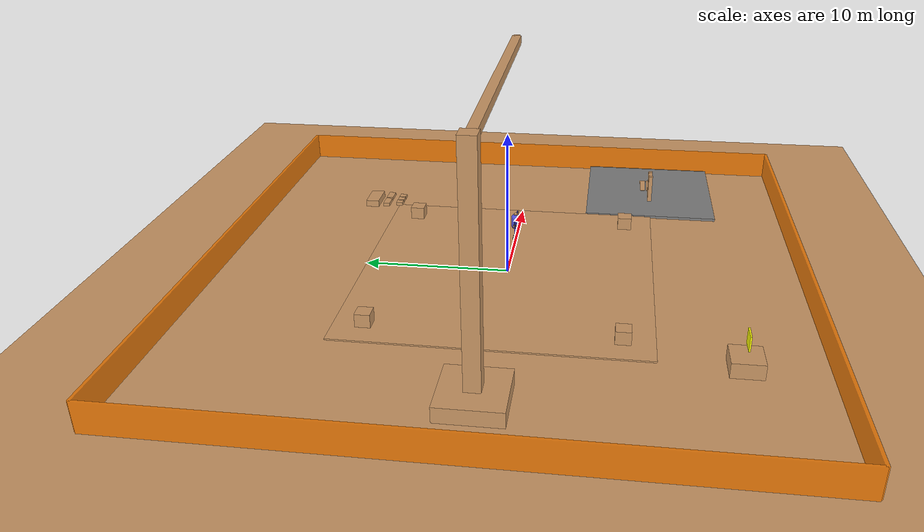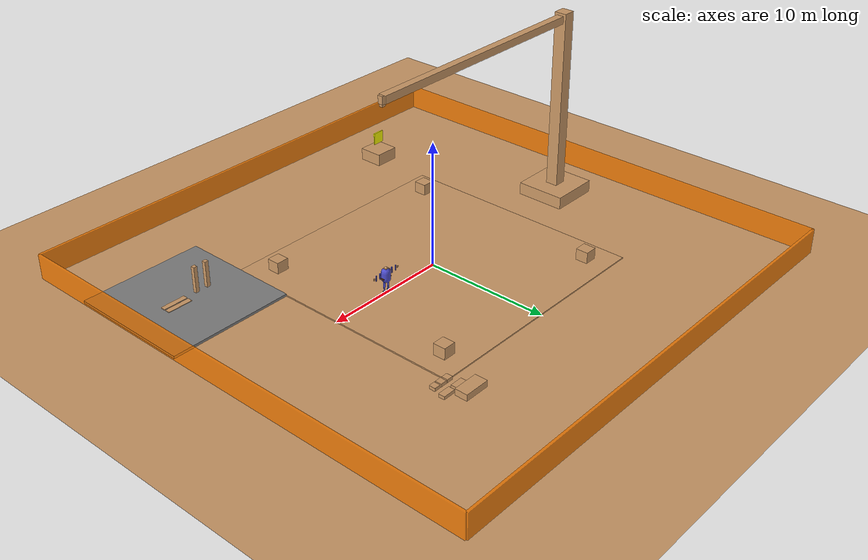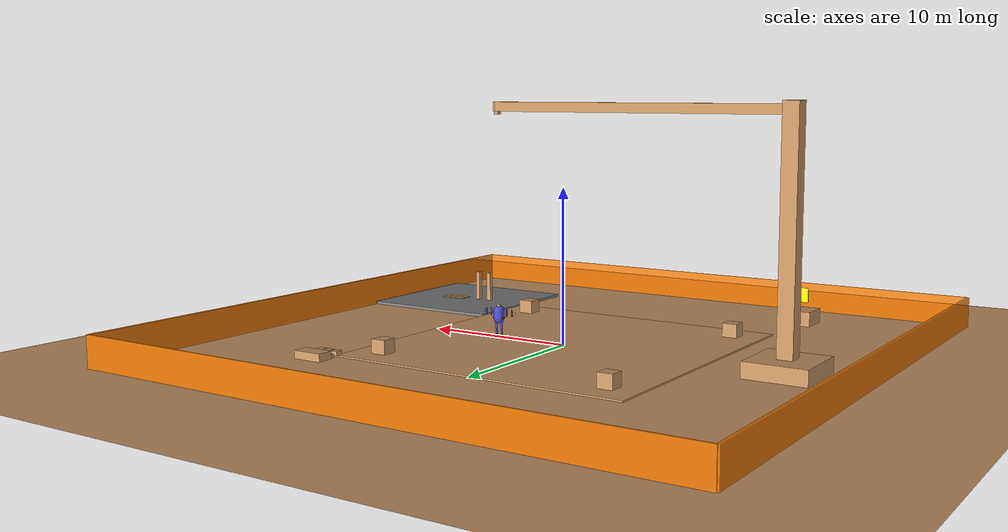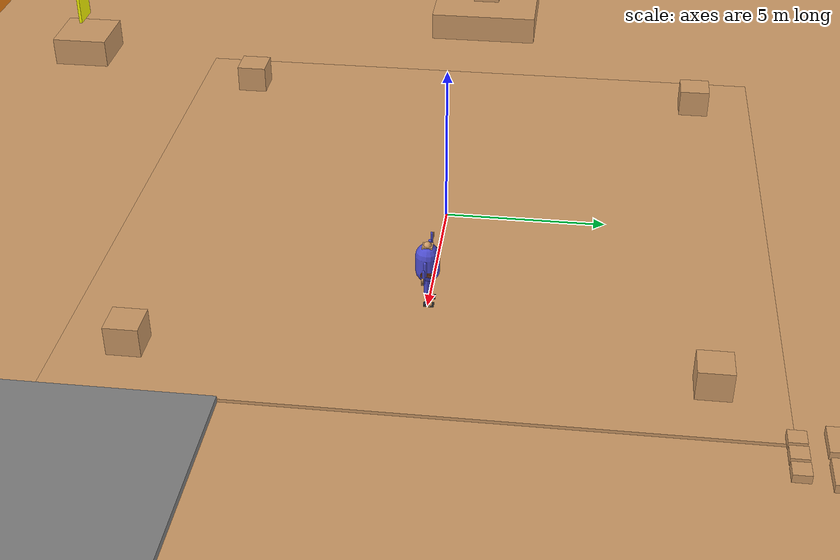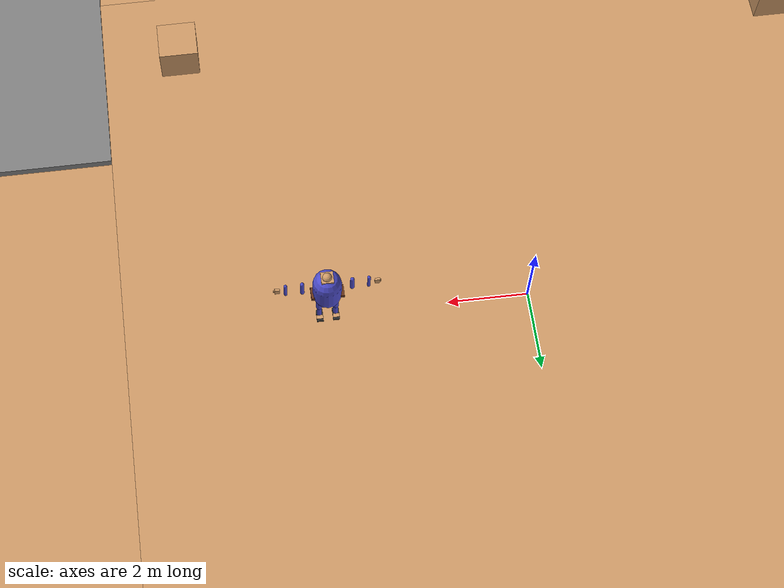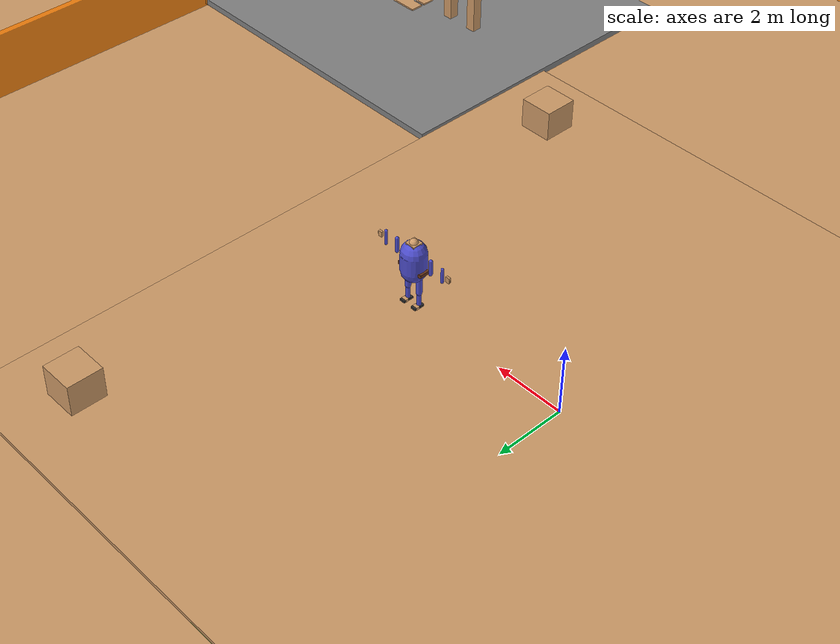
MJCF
<mujoco model="construction_site">
    <compiler angle="radian" coordinate="local" inertiafromgeom="true"/>

    <default>
        <joint armature="1" damping="1" limited="true"/>
        <geom conaffinity="1" condim="3" density="5.0" friction="1.5 0.5 0.5" margin="0.01" rgba="0.8 0.6 0.4 1"/>
        <motor ctrllimited="true" ctrlrange="-200.0 200.0"/>
    </default>

    <option gravity="0 0 -9.81" integrator="RK4" timestep="0.002"/>

    <asset>
        <texture builtin="gradient" height="100" rgb1="0.4 0.6 0.8" rgb2="0 0 0" type="skybox" width="100"/>
        <texture builtin="flat" height="128" name="texgeom" random="0.01" rgb1="0.8 0.6 0.4" rgb2="0.8 0.6 0.4" type="cube" width="127"/>
        <texture builtin="checker" height="100" name="texplane" rgb1="0.2 0.2 0.2" rgb2="0.8 0.8 0.8" type="2d" width="100"/>
        <material name="MatPlane" reflectance="0.3" shininess="1" specular="1" texrepeat="30 30" texture="texplane"/>
        <material name="geom" texture="texgeom" texuniform="true"/>
        <material name="concrete" rgba="0.7 0.7 0.7 1" shininess="0.3"/>
        <material name="steel" rgba="0.8 0.8 0.9 1" shininess="0.8" specular="0.9"/>
        <material name="wood" rgba="0.6 0.4 0.2 1" shininess="0.2"/>
        <material name="safety" rgba="1 0.5 0 1" shininess="0.5"/>
    </asset>

    <worldbody>
        <!-- Ground plane -->
        <geom conaffinity="1" condim="3" material="MatPlane" name="floor" pos="0 0 0" size="40 40 0.1" type="plane"/>

        <!-- Construction site boundaries -->
        <body name="site_boundaries">
            <!-- Safety fence around construction site -->
            <geom name="fence_north" pos="0 20 1" size="20 0.1 1" type="box" rgba="1 0.5 0 0.8"/>
            <geom name="fence_south" pos="0 -20 1" size="20 0.1 1" type="box" rgba="1 0.5 0 0.8"/>
            <geom name="fence_east" pos="20 0 1" size="0.1 20 1" type="box" rgba="1 0.5 0 0.8"/>
            <geom name="fence_west" pos="-20 0 1" size="0.1 20 1" type="box" rgba="1 0.5 0 0.8"/>
        </body>

        <!-- Foundation area -->
        <body name="foundation">
            <geom name="foundation_base" pos="0 0 0.05" size="10 10 0.05" type="box" material="concrete"/>
            <!-- Foundation pillars -->
            <geom name="pillar1" pos="-8 -8 0.5" size="0.5 0.5 0.5" type="box" material="concrete"/>
            <geom name="pillar2" pos="8 -8 0.5" size="0.5 0.5 0.5" type="box" material="concrete"/>
            <geom name="pillar3" pos="-8 8 0.5" size="0.5 0.5 0.5" type="box" material="concrete"/>
            <geom name="pillar4" pos="8 8 0.5" size="0.5 0.5 0.5" type="box" material="concrete"/>
        </body>

        <!-- Humanoid robot with enhanced construction capabilities -->
        <body name="humanoid" pos="5 0 1.5">
            <freejoint name="humanoid_root"/>
            <camera name="track" mode="trackcom" pos="0 -5 2" xyaxes="1 0 0 0 0 1"/>

            <!-- Torso with tool belt -->
            <geom name="torso" pos="0 0 0" size="0.35 0.25 0.3" type="capsule" rgba="0.3 0.3 0.8 1"/>
            <geom name="tool_belt" pos="0 0 -0.2" size="0.4 0.15 0.05" type="box" rgba="0.4 0.2 0.1 1"/>

            <!-- Head with hard hat -->
            <body name="head" pos="0 0 0.35">
                <geom name="head" pos="0 0 0.1" size="0.12 0.12 0.1" type="capsule" rgba="0.8 0.6 0.4 1"/>
                <geom name="hard_hat" pos="0 0 0.15" size="0.15 0.15 0.08" type="box" material="safety"/>
                <camera name="head_camera" pos="0.1 0 0.05" euler="0 0 0" fovy="60"/>
            </body>

            <!-- Arms with enhanced grippers -->
            <!-- Right arm -->
            <body name="right_upper_arm" pos="0.4 0 0.15">
                <joint name="right_shoulder1" type="hinge" axis="1 0 0" range="-2.5 2.5"/>
                <joint name="right_shoulder2" type="hinge" axis="0 1 0" range="-1.5 1.5"/>
                <joint name="right_shoulder3" type="hinge" axis="0 0 1" range="-2 2"/>
                <geom name="right_upper_arm" pos="0.2 0 0" size="0.05 0.2" type="capsule" rgba="0.3 0.3 0.8 1"/>

                <body name="right_lower_arm" pos="0.4 0 0">
                    <joint name="right_elbow" type="hinge" axis="0 1 0" range="-2.5 0"/>
                    <geom name="right_lower_arm" pos="0.2 0 0" size="0.04 0.2" type="capsule" rgba="0.3 0.3 0.8 1"/>

                    <!-- Enhanced gripper hand -->
                    <body name="right_hand" pos="0.4 0 0">
                        <joint name="right_wrist1" type="hinge" axis="1 0 0" range="-1 1"/>
                        <joint name="right_wrist2" type="hinge" axis="0 1 0" range="-1 1"/>
                        <geom name="right_palm" pos="0 0 0" size="0.06 0.03 0.08" type="box" rgba="0.8 0.6 0.4 1"/>

                        <!-- Gripper fingers -->
                        <body name="right_thumb" pos="0.06 0 0">
                            <joint name="right_thumb_joint" type="hinge" axis="0 1 0" range="0 1.5"/>
                            <geom name="right_thumb" pos="0.02 0 0" size="0.015 0.03" type="capsule" rgba="0.8 0.6 0.4 1"/>
                        </body>
                        <body name="right_finger1" pos="-0.03 0.02 0">
                            <joint name="right_finger1_joint" type="hinge" axis="0 1 0" range="0 1.5"/>
                            <geom name="right_finger1" pos="-0.02 0 0" size="0.01 0.025" type="capsule" rgba="0.8 0.6 0.4 1"/>
                        </body>
                        <body name="right_finger2" pos="-0.03 -0.02 0">
                            <joint name="right_finger2_joint" type="hinge" axis="0 1 0" range="0 1.5"/>
                            <geom name="right_finger2" pos="-0.02 0 0" size="0.01 0.025" type="capsule" rgba="0.8 0.6 0.4 1"/>
                        </body>
                    </body>
                </body>
            </body>

            <!-- Left arm (mirror of right) -->
            <body name="left_upper_arm" pos="-0.4 0 0.15">
                <joint name="left_shoulder1" type="hinge" axis="1 0 0" range="-2.5 2.5"/>
                <joint name="left_shoulder2" type="hinge" axis="0 1 0" range="-1.5 1.5"/>
                <joint name="left_shoulder3" type="hinge" axis="0 0 1" range="-2 2"/>
                <geom name="left_upper_arm" pos="-0.2 0 0" size="0.05 0.2" type="capsule" rgba="0.3 0.3 0.8 1"/>

                <body name="left_lower_arm" pos="-0.4 0 0">
                    <joint name="left_elbow" type="hinge" axis="0 1 0" range="-2.5 0"/>
                    <geom name="left_lower_arm" pos="-0.2 0 0" size="0.04 0.2" type="capsule" rgba="0.3 0.3 0.8 1"/>

                    <!-- Enhanced gripper hand -->
                    <body name="left_hand" pos="-0.4 0 0">
                        <joint name="left_wrist1" type="hinge" axis="1 0 0" range="-1 1"/>
                        <joint name="left_wrist2" type="hinge" axis="0 1 0" range="-1 1"/>
                        <geom name="left_palm" pos="0 0 0" size="0.06 0.03 0.08" type="box" rgba="0.8 0.6 0.4 1"/>

                        <!-- Gripper fingers -->
                        <body name="left_thumb" pos="-0.06 0 0">
                            <joint name="left_thumb_joint" type="hinge" axis="0 1 0" range="0 1.5"/>
                            <geom name="left_thumb" pos="-0.02 0 0" size="0.015 0.03" type="capsule" rgba="0.8 0.6 0.4 1"/>
                        </body>
                        <body name="left_finger1" pos="0.03 0.02 0">
                            <joint name="left_finger1_joint" type="hinge" axis="0 1 0" range="0 1.5"/>
                            <geom name="left_finger1" pos="0.02 0 0" size="0.01 0.025" type="capsule" rgba="0.8 0.6 0.4 1"/>
                        </body>
                        <body name="left_finger2" pos="0.03 -0.02 0">
                            <joint name="left_finger2_joint" type="hinge" axis="0 1 0" range="0 1.5"/>
                            <geom name="left_finger2" pos="0.02 0 0" size="0.01 0.025" type="capsule" rgba="0.8 0.6 0.4 1"/>
                        </body>
                    </body>
                </body>
            </body>

            <!-- Strong legs for carrying heavy materials -->
            <!-- Right leg -->
            <body name="right_thigh" pos="0.2 0 -0.4">
                <joint name="right_hip1" type="hinge" axis="1 0 0" range="-2 1"/>
                <joint name="right_hip2" type="hinge" axis="0 1 0" range="-0.5 0.5"/>
                <joint name="right_hip3" type="hinge" axis="0 0 1" range="-1 1"/>
                <geom name="right_thigh" pos="0 0 -0.25" size="0.08 0.25" type="capsule" rgba="0.3 0.3 0.8 1"/>

                <body name="right_shin" pos="0 0 -0.5">
                    <joint name="right_knee" type="hinge" axis="0 1 0" range="0 2.5"/>
                    <geom name="right_shin" pos="0 0 -0.2" size="0.06 0.2" type="capsule" rgba="0.3 0.3 0.8 1"/>

                    <!-- Safety boot -->
                    <body name="right_foot" pos="0 0 -0.4">
                        <joint name="right_ankle1" type="hinge" axis="1 0 0" range="-1 1"/>
                        <joint name="right_ankle2" type="hinge" axis="0 1 0" range="-1 1"/>
                        <geom name="right_foot" pos="0 0.05 -0.02" size="0.08 0.15 0.03" type="box" rgba="0.2 0.2 0.2 1"/>
                        <geom name="right_boot_steel" pos="0 0.1 -0.02" size="0.08 0.05 0.04" type="box" material="steel"/>
                    </body>
                </body>
            </body>

            <!-- Left leg (mirror of right) -->
            <body name="left_thigh" pos="-0.2 0 -0.4">
                <joint name="left_hip1" type="hinge" axis="1 0 0" range="-2 1"/>
                <joint name="left_hip2" type="hinge" axis="0 1 0" range="-0.5 0.5"/>
                <joint name="left_hip3" type="hinge" axis="0 0 1" range="-1 1"/>
                <geom name="left_thigh" pos="0 0 -0.25" size="0.08 0.25" type="capsule" rgba="0.3 0.3 0.8 1"/>

                <body name="left_shin" pos="0 0 -0.5">
                    <joint name="left_knee" type="hinge" axis="0 1 0" range="0 2.5"/>
                    <geom name="left_shin" pos="0 0 -0.2" size="0.06 0.2" type="capsule" rgba="0.3 0.3 0.8 1"/>

                    <!-- Safety boot -->
                    <body name="left_foot" pos="0 0 -0.4">
                        <joint name="left_ankle1" type="hinge" axis="1 0 0" range="-1 1"/>
                        <joint name="left_ankle2" type="hinge" axis="0 1 0" range="-1 1"/>
                        <geom name="left_foot" pos="0 0.05 -0.02" size="0.08 0.15 0.03" type="box" rgba="0.2 0.2 0.2 1"/>
                        <geom name="left_boot_steel" pos="0 0.1 -0.02" size="0.08 0.05 0.04" type="box" material="steel"/>
                    </body>
                </body>
            </body>
        </body>

        <!-- Construction crane -->
        <body name="crane_base" pos="-15 0 0">
            <geom name="crane_foundation" pos="0 0 0.5" size="2 2 0.5" type="box" material="concrete"/>
            <joint name="crane_rotation" type="hinge" axis="0 0 1" range="-3.14 3.14" damping="10"/>

            <!-- Crane tower -->
            <geom name="crane_tower" pos="0 0 8" size="0.5 0.5 7.5" type="box" material="steel"/>

            <!-- Crane arm -->
            <body name="crane_arm" pos="0 0 15">
                <joint name="crane_arm_angle" type="hinge" axis="0 1 0" range="-0.5 0.5" damping="5"/>
                <geom name="crane_arm_beam" pos="10 0 0" size="10 0.3 0.3" type="box" material="steel"/>

                <!-- Crane hook -->
                <body name="crane_hook" pos="20 0 0">
                    <joint name="crane_cable" type="slide" axis="0 0 1" range="-14 0" damping="2"/>
                    <geom name="crane_hook_block" pos="0 0 0" size="0.2 0.2 0.3" type="box" material="steel"/>
                    <geom name="crane_hook_tip" pos="0 0 -0.4" size="0.15 0.15 0.1" type="box" material="steel"/>
                </body>
            </body>
        </body>

        <!-- Construction blocks (each at top level with freejoint) -->
        <!-- Small blocks -->
        <body name="small_block1" pos="10 10 0.25">
            <freejoint/>
            <geom name="small_block1_geom" size="0.25 0.25 0.125" type="box" material="concrete" mass="10"/>
        </body>
        <body name="small_block2" pos="10.6 10 0.25">
            <freejoint/>
            <geom name="small_block2_geom" size="0.25 0.25 0.125" type="box" material="concrete" mass="10"/>
        </body>
        <body name="small_block3" pos="11.2 10 0.25">
            <freejoint/>
            <geom name="small_block3_geom" size="0.25 0.25 0.125" type="box" material="concrete" mass="10"/>
        </body>

        <!-- Medium blocks -->
        <body name="medium_block1" pos="10 11 0.25">
            <freejoint/>
            <geom name="medium_block1_geom" size="0.5 0.25 0.125" type="box" material="concrete" mass="20"/>
        </body>
        <body name="medium_block2" pos="11.2 11 0.25">
            <freejoint/>
            <geom name="medium_block2_geom" size="0.5 0.25 0.125" type="box" material="concrete" mass="20"/>
        </body>

        <!-- Large blocks -->
        <body name="large_block1" pos="10 12 0.5">
            <freejoint/>
            <geom name="large_block1_geom" size="1 0.5 0.25" type="box" material="concrete" mass="40"/>
        </body>

        <!-- Material storage area -->
        <body name="material_storage" pos="15 -10 0">
            <geom name="storage_platform" pos="0 0 0.1" size="5 5 0.1" type="box" rgba="0.5 0.5 0.5 1"/>
        </body>

        <!-- Steel beams (at top level) -->
        <body name="steel_beam1" pos="13 -10 0.3">
            <freejoint/>
            <geom name="steel_beam1_geom" size="0.15 0.15 2" type="box" material="steel" mass="50"/>
        </body>
        <body name="steel_beam2" pos="14 -10 0.3">
            <freejoint/>
            <geom name="steel_beam2_geom" size="0.15 0.15 2" type="box" material="steel" mass="50"/>
        </body>

        <!-- Wood planks (at top level) -->
        <body name="wood_plank1" pos="16 -10 0.2">
            <freejoint/>
            <geom name="wood_plank1_geom" size="1 0.2 0.05" type="box" material="wood" mass="5"/>
        </body>
        <body name="wood_plank2" pos="16 -9.5 0.2">
            <freejoint/>
            <geom name="wood_plank2_geom" size="1 0.2 0.05" type="box" material="wood" mass="5"/>
        </body>

        <!-- Safety equipment station -->
        <body name="safety_station" pos="-10 -15 0">
            <geom name="safety_station_base" pos="0 0 0.5" size="1 1 0.5" type="box" material="safety"/>
            <geom name="safety_sign" pos="0 0 2" size="0.5 0.05 0.5" type="box" rgba="1 1 0 1"/>
        </body>

        <!-- Construction target area markers -->
        <body name="target_markers">
            <geom name="target1" pos="0 5 0.01" size="1 1 0.01" type="box" rgba="0 1 0 0.3" contype="0" conaffinity="0"/>
            <geom name="target2" pos="0 7 0.01" size="1 1 0.01" type="box" rgba="0 1 0 0.3" contype="0" conaffinity="0"/>
            <geom name="target3" pos="0 9 0.01" size="1 1 0.01" type="box" rgba="0 1 0 0.3" contype="0" conaffinity="0"/>
        </body>

        <!-- Lighting for construction site -->
        <light cutoff="100" diffuse="1 1 1" dir="0 0 -1" directional="true" exponent="1" pos="0 0 30" specular="0.5 0.5 0.5"/>
        <light cutoff="50" diffuse="0.8 0.8 0.8" dir="1 0 -0.5" directional="true" pos="-20 0 20" specular="0.3 0.3 0.3"/>
        <light cutoff="50" diffuse="0.8 0.8 0.8" dir="-1 0 -0.5" directional="true" pos="20 0 20" specular="0.3 0.3 0.3"/>
    </worldbody>

    <actuator>
        <!-- Humanoid actuators with construction-appropriate strength -->
        <!-- Arms -->
        <motor name="right_shoulder1_motor" joint="right_shoulder1" gear="100"/>
        <motor name="right_shoulder2_motor" joint="right_shoulder2" gear="100"/>
        <motor name="right_shoulder3_motor" joint="right_shoulder3" gear="100"/>
        <motor name="right_elbow_motor" joint="right_elbow" gear="80"/>
        <motor name="right_wrist1_motor" joint="right_wrist1" gear="50"/>
        <motor name="right_wrist2_motor" joint="right_wrist2" gear="50"/>
        <motor name="right_thumb_motor" joint="right_thumb_joint" gear="30"/>
        <motor name="right_finger1_motor" joint="right_finger1_joint" gear="30"/>
        <motor name="right_finger2_motor" joint="right_finger2_joint" gear="30"/>

        <motor name="left_shoulder1_motor" joint="left_shoulder1" gear="100"/>
        <motor name="left_shoulder2_motor" joint="left_shoulder2" gear="100"/>
        <motor name="left_shoulder3_motor" joint="left_shoulder3" gear="100"/>
        <motor name="left_elbow_motor" joint="left_elbow" gear="80"/>
        <motor name="left_wrist1_motor" joint="left_wrist1" gear="50"/>
        <motor name="left_wrist2_motor" joint="left_wrist2" gear="50"/>
        <motor name="left_thumb_motor" joint="left_thumb_joint" gear="30"/>
        <motor name="left_finger1_motor" joint="left_finger1_joint" gear="30"/>
        <motor name="left_finger2_motor" joint="left_finger2_joint" gear="30"/>

        <!-- Legs -->
        <motor name="right_hip1_motor" joint="right_hip1" gear="150"/>
        <motor name="right_hip2_motor" joint="right_hip2" gear="150"/>
        <motor name="right_hip3_motor" joint="right_hip3" gear="150"/>
        <motor name="right_knee_motor" joint="right_knee" gear="120"/>
        <motor name="right_ankle1_motor" joint="right_ankle1" gear="80"/>
        <motor name="right_ankle2_motor" joint="right_ankle2" gear="80"/>

        <motor name="left_hip1_motor" joint="left_hip1" gear="150"/>
        <motor name="left_hip2_motor" joint="left_hip2" gear="150"/>
        <motor name="left_hip3_motor" joint="left_hip3" gear="150"/>
        <motor name="left_knee_motor" joint="left_knee" gear="120"/>
        <motor name="left_ankle1_motor" joint="left_ankle1" gear="80"/>
        <motor name="left_ankle2_motor" joint="left_ankle2" gear="80"/>

        <!-- Crane controls -->
        <motor name="crane_rotation_motor" joint="crane_rotation" gear="500"/>
        <motor name="crane_arm_motor" joint="crane_arm_angle" gear="300"/>
        <motor name="crane_cable_motor" joint="crane_cable" gear="200"/>
    </actuator>
</mujoco>
